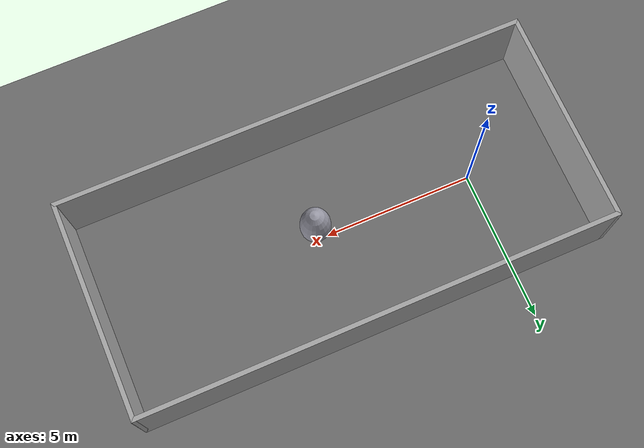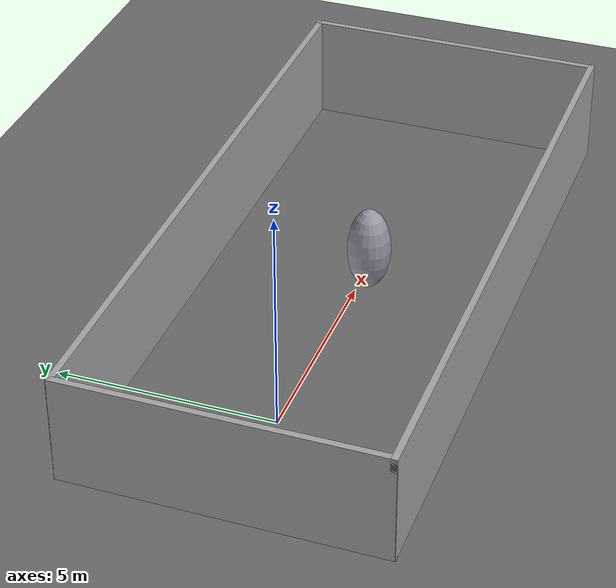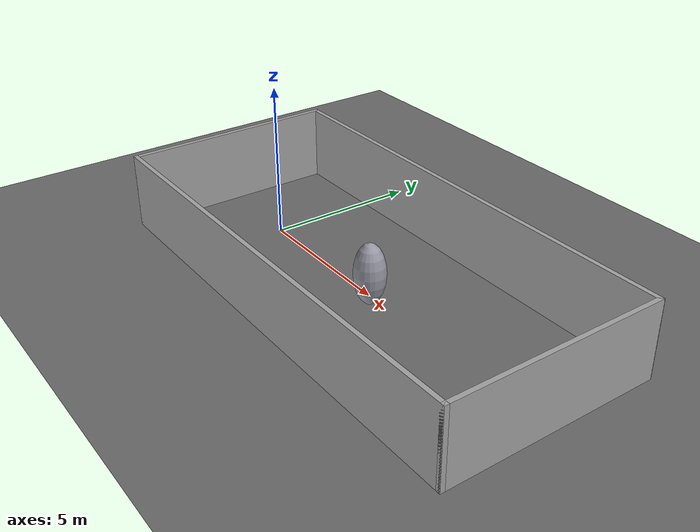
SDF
<?xml version="1.0"?>
<sdf version="1.10">
  <world name="my_rgl_simple">

    <plugin filename="gz-sim-physics-system" name="gz::sim::systems::Physics"/>
    <plugin filename="gz-sim-user-commands-system" name="gz::sim::systems::UserCommands"/>
    <plugin filename="gz-sim-scene-broadcaster-system" name="gz::sim::systems::SceneBroadcaster"/>
    <plugin filename="gz-sim-contact-system" name="gz::sim::systems::Contact"/>
    <plugin filename="gz-sim-imu-system" name="gz::sim::systems::Imu"/>
    <plugin filename="gz-sim-air-pressure-system" name="gz::sim::systems::AirPressure"/>
    <plugin filename="gz-sim-navsat-system" name="gz::sim::systems::NavSat"/>
    <plugin filename="gz-sim-magnetometer-system" name="gz::sim::systems::Magnetometer"/>
    <plugin filename="gz-sim-sensors-system" name="gz::sim::systems::Sensors">
      <render_engine>ogre2</render_engine>
    </plugin>
    <plugin filename="RGLServerPluginManager" name="rgl::RGLServerPluginManager">
      <do_ignore_entities_in_lidar_link>true</do_ignore_entities_in_lidar_link>
    </plugin>

    <physics name="ifds_250hz" type="ode">
      <max_step_size>0.004</max_step_size>
      <real_time_factor>1.0</real_time_factor>
      <real_time_update_rate>250</real_time_update_rate>
    </physics>
    <gravity>0 0 -9.8</gravity>

    <magnetic_field>6e-06 2.3e-05 -4.2e-05</magnetic_field>

    <atmosphere type="adiabatic"/>

    <spherical_coordinates>
      <surface_model>EARTH_WGS84</surface_model>
      <world_frame_orientation>ENU</world_frame_orientation>
      <latitude_deg>47.397971057728974</latitude_deg>
      <longitude_deg>8.546163739800146</longitude_deg>
      <elevation>0</elevation>
    </spherical_coordinates>
    <scene>
      <grid>false</grid><ambient>0.4 0.4 0.4 1</ambient>
      <background>0.7 0.7 0.7 1</background><shadows>true</shadows>
    </scene>
    <light name="sun" type="directional">
      <pose>20 0 50 0 0 0</pose><cast_shadows>true</cast_shadows>
      <diffuse>0.9 0.9 0.9 1</diffuse><specular>0.2 0.2 0.2 1</specular>
      <direction>-0.4 0.2 -0.9</direction>
    </light>
    <model name="ground_plane">
      <static>true</static>
      <link name="link">
        <collision name="collision"><geometry><plane><normal>0 0 1</normal><size>100 100</size></plane></geometry></collision>
        <visual name="visual">
          <geometry><plane><normal>0 0 1</normal><size>100 100</size></plane></geometry>
          <material><ambient>0.30 0.30 0.30 1</ambient><diffuse>0.42 0.42 0.42 1</diffuse></material>
        </visual>
      </link>
    </model>

    <!-- Extended CERLAB corridor envelope: 43.725 m long, 7.15 m wide and 2.5 m high. -->

    <model name="corridor_wall_left">
      <static>true</static>
      <pose>4.7125 3.5 1.25 0 0 0</pose>
      <link name="link">
        <collision name="collision">
          <geometry><box><size>15.725 0.15 2.5</size></box></geometry>
        </collision>
        <visual name="visual">
          <geometry><box><size>15.725 0.15 2.5</size></box></geometry>
          <material><ambient>0.55 0.55 0.55 1</ambient><diffuse>0.65 0.65 0.65 1</diffuse></material>
        </visual>
      </link>
    </model>

    <model name="corridor_wall_right">
      <static>true</static>
      <pose>4.7125 -3.5 1.25 0 0 0</pose>
      <link name="link">
        <collision name="collision">
          <geometry><box><size>15.725 0.15 2.5</size></box></geometry>
        </collision>
        <visual name="visual">
          <geometry><box><size>15.725 0.15 2.5</size></box></geometry>
          <material><ambient>0.55 0.55 0.55 1</ambient><diffuse>0.65 0.65 0.65 1</diffuse></material>
        </visual>
      </link>
    </model>

    <model name="corridor_wall_start">
      <static>true</static>
      <pose>-3.075 0 1.25 0 0 0</pose>
      <link name="link">
        <collision name="collision">
          <geometry><box><size>0.15 7.15 2.5</size></box></geometry>
        </collision>
        <visual name="visual">
          <geometry><box><size>0.15 7.15 2.5</size></box></geometry>
          <material><ambient>0.55 0.55 0.55 1</ambient><diffuse>0.65 0.65 0.65 1</diffuse></material>
        </visual>
      </link>
    </model>

    <model name="corridor_wall_end">
      <static>true</static>
      <pose>12.5 0 1.25 0 0 0</pose>
      <link name="link">
        <collision name="collision">
          <geometry><box><size>0.15 7.15 2.5</size></box></geometry>
        </collision>
        <visual name="visual">
          <geometry><box><size>0.15 7.15 2.5</size></box></geometry>
          <material><ambient>0.55 0.55 0.55 1</ambient><diffuse>0.65 0.65 0.65 1</diffuse></material>
        </visual>
      </link>
    </model>

    <!-- Single static obstacle -->

    <model name="static_obstacle_1">
      <static>true</static>
      <pose>5.32173 -0.210448 1.0 0 0 0</pose>
      <link name="link">
        <collision name="collision">
          <geometry><ellipsoid><radii>0.505 0.5 1.0</radii></ellipsoid></geometry>
        </collision>
        <visual name="visual">
          <geometry><ellipsoid><radii>0.505 0.5 1.0</radii></ellipsoid></geometry>
          <material><ambient>0.48 0.48 0.52 1</ambient><diffuse>0.60 0.60 0.65 1</diffuse></material>
        </visual>
      </link>
    </model>

  </world>
</sdf>
